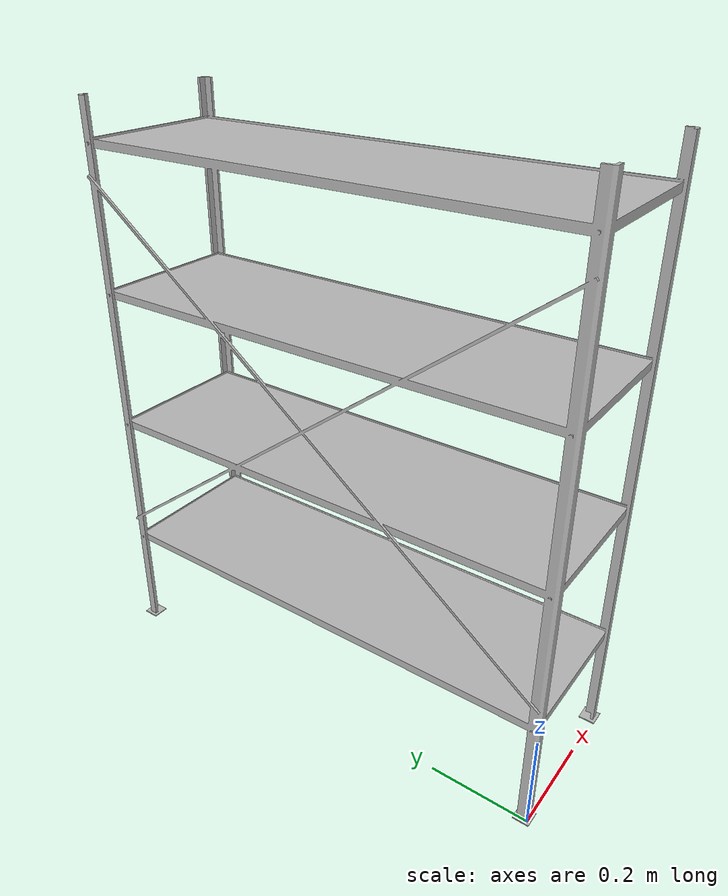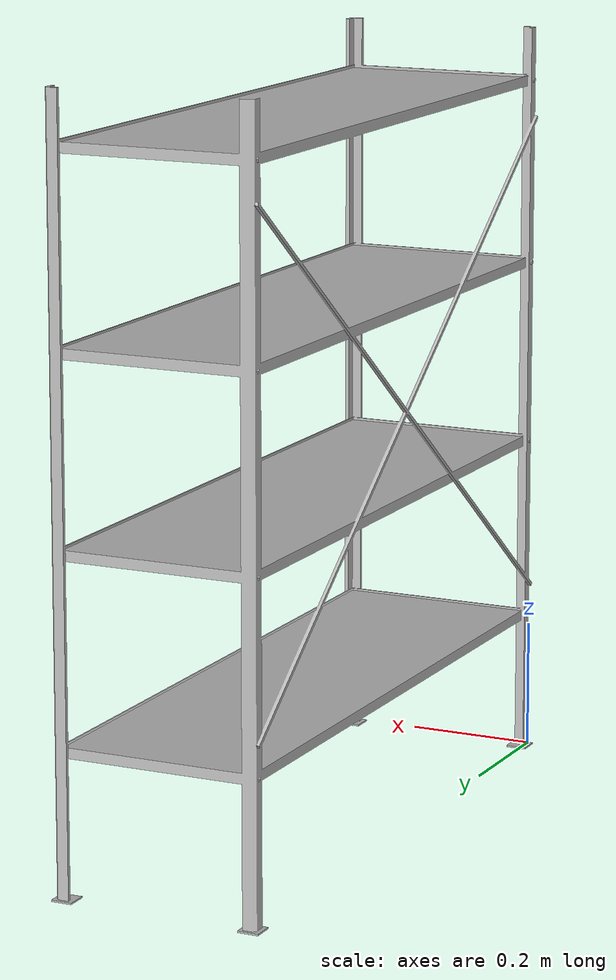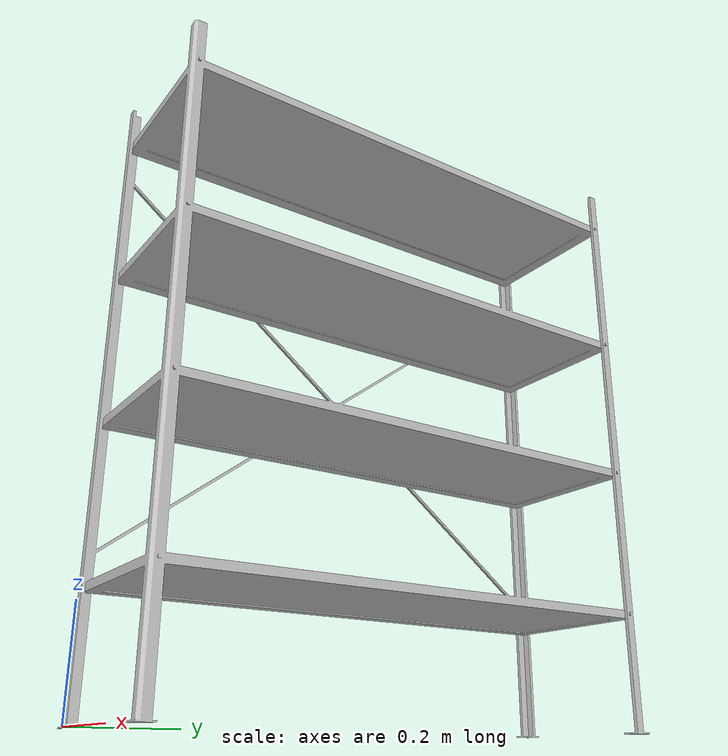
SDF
<?xml version="1.0" ?>
<sdf version="1.5">
  <model name="small_rack">
    <static>true</static>
    <link name="small_rack_link">
        <collision name="small_rack_collision">
         <geometry>
            <mesh>
                <uri>model://small_rack/meshes/model.dae</uri>
                <scale>0.5 0.5 0.5</scale>
            </mesh>
        </geometry>
      </collision>

      <visual name="small_rack_mesh">
        <cast_shadows>true</cast_shadows>
        <geometry>
            <mesh>
                <uri>model://small_rack/meshes/model.dae</uri>
                <scale>0.5 0.5 0.5</scale>
            </mesh>
        </geometry>
      </visual>
    </link>
  </model>
</sdf>
